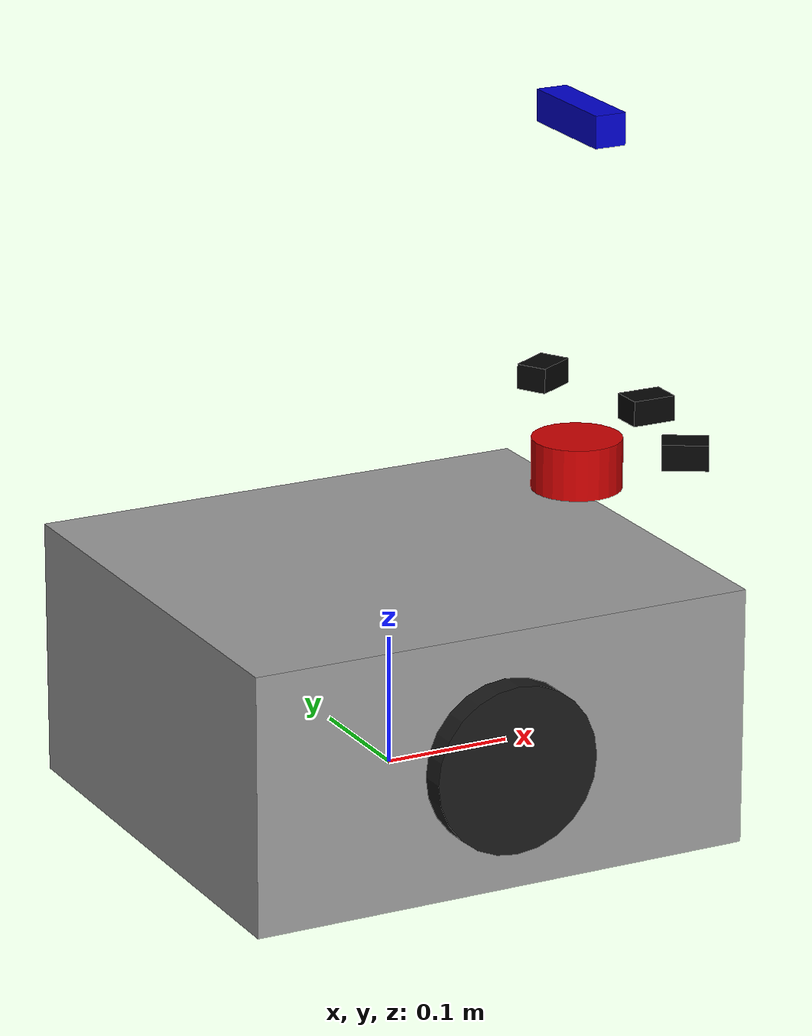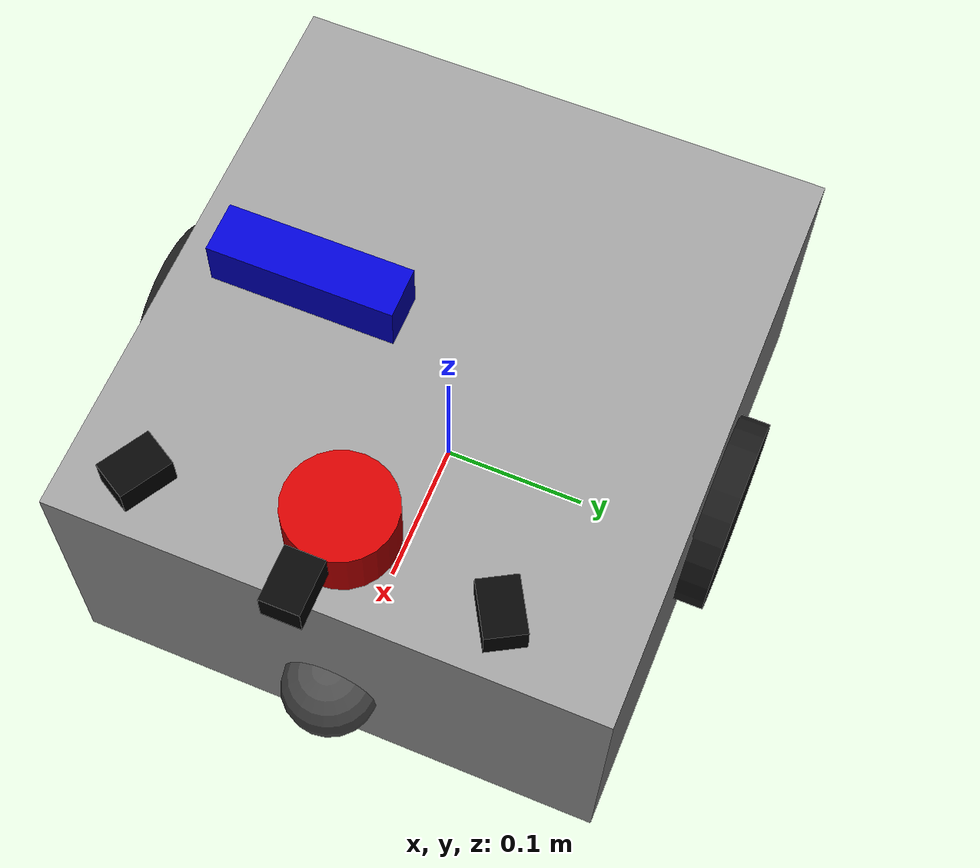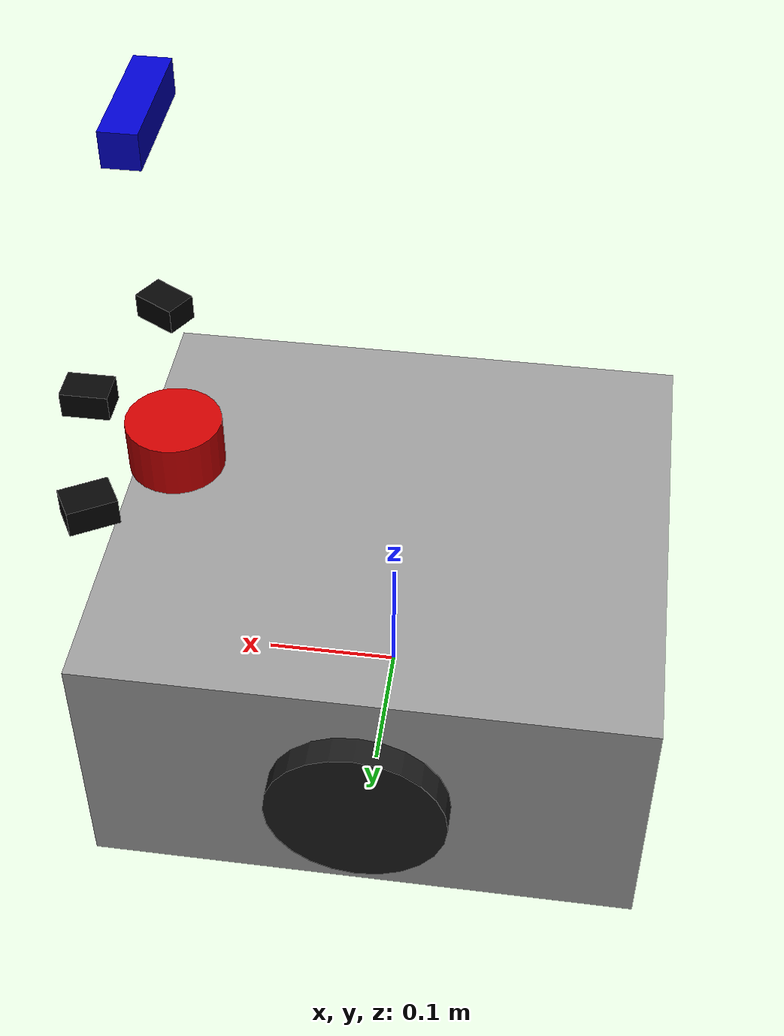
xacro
<?xml version="1.0"?>
<robot name="elderbot" xmlns:xacro="http://ros.org/wiki/xacro">
  <xacro:include filename="$(find elderbot_description)/urdf/elderbot_properties.urdf.xacro" />
  <xacro:include filename="$(find elderbot_description)/urdf/mech/base.urdf.xacro" />
  <xacro:include filename="$(find elderbot_description)/urdf/mech/wheel.urdf.xacro" />
  <xacro:include filename="$(find elderbot_description)/urdf/mech/caster_wheel.urdf.xacro" />
  <xacro:include filename="$(find elderbot_description)/urdf/sensors/imu.urdf.xacro" />
  <xacro:include filename="$(find elderbot_description)/urdf/sensors/generic_laser.urdf.xacro" />
  <xacro:include filename="$(find elderbot_description)/urdf/sensors/depth_sensor.urdf.xacro" />
  <xacro:include filename="$(find elderbot_description)/urdf/sensors/ultrasonic.urdf.xacro" />
  <xacro:include filename="$(find elderbot_description)/urdf/controllers/diff_drive.urdf.xacro" />

  <xacro:base
    length="${base_length}"
    width="${base_width}"
    height="${base_height}"
    mass="${base_mass}"
    wheel_radius="${wheel_radius}"
    wheel_pos_z="${wheel_pos_z}"
  />

  <xacro:wheel
    side="left"
    radius="${wheel_radius}"
    width="${wheel_width}"
    pos_x="${wheel_pos_x}"
    pos_y="${wheel_pos_y}"
    pos_z="${wheel_pos_z}"
    mass="${wheel_mass}"
  />

  <xacro:wheel
    side="right"
    radius="${wheel_radius}"
    width="${wheel_width}"
    pos_x="${wheel_pos_x}"
    pos_y="${-wheel_pos_y}"
    pos_z="${wheel_pos_z}"
    mass="${wheel_mass}"
  />

  <xacro:if value="${front_caster_wheel}">
    <xacro:caster_wheel
      side="front"
      mass="0.01"
      base_length="${base_length}"
      wheel_radius="${wheel_radius}"
      wheel_pos_z="${wheel_pos_z}"
    />
  </xacro:if>

  <xacro:imu/>

  <xacro:generic_laser>
    <xacro:insert_block name="laser_pose" />
  </xacro:generic_laser>

  <xacro:depth_sensor>
    <xacro:insert_block name="depth_sensor_pose" />
  </xacro:depth_sensor>

  <xacro:ultrasonic_sensor name="ultrasonic_front">
    <xacro:insert_block name="ultrasonic_front_pose" />
  </xacro:ultrasonic_sensor>

  <xacro:ultrasonic_sensor name="ultrasonic_front_left">
    <xacro:insert_block name="ultrasonic_front_left_pose" />
  </xacro:ultrasonic_sensor>

  <xacro:ultrasonic_sensor name="ultrasonic_front_right">
    <xacro:insert_block name="ultrasonic_front_right_pose" />
  </xacro:ultrasonic_sensor>

  <xacro:diff_drive_controller
    wheel_separation="${wheel_pos_y * 2}"
    wheel_radius="${wheel_radius}"
    wheel_torque="${wheel_torque}"
  />
</robot>

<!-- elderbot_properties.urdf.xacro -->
<robot xmlns:xacro="http://ros.org/wiki/xacro">
  <!-- Base dimensions -->
  <xacro:property name="base_length" value="0.40" />
  <xacro:property name="base_width" value="0.37" />
  <xacro:property name="base_height" value="0.20" />
  <xacro:property name="base_mass" value="5.0" />

  <!-- Wheel properties -->
  <xacro:property name="wheel_radius" value="0.065" />
  <xacro:property name="wheel_width" value="0.04" />
  <xacro:property name="wheel_pos_x" value="0.0" />
  <xacro:property name="wheel_pos_y" value="0.185" />
  <xacro:property name="wheel_pos_z" value="0.0" />
  <xacro:property name="wheel_mass" value="0.5" />
  <xacro:property name="wheel_torque" value="20" />

  <!-- Caster wheels -->
  <xacro:property name="front_caster_wheel" value="true" />
  <xacro:property name="rear_caster_wheel" value="false" />

  <!-- Laser (RPLidar C1): mounted at front, 16cm from center, 15cm above ground -->
  <xacro:property name="laser_pose">
    <origin xyz="0.16 0 0.15" rpy="0 0 3.14159265" />
  </xacro:property>

  <!-- Depth sensor (Orbbec Gemini 335): at x=0.16m, z=0.42m -->
  <xacro:property name="depth_sensor_pose">
    <origin xyz="0.16 0 0.42" rpy="0 0 0" />
  </xacro:property>

  <!-- Ultrasonic sensors: 0.22m from robot center, 0.25m above ground. -->
  <xacro:property name="ultrasonic_mount_z" value="0.185" />
  <xacro:property name="ultrasonic_front_pose">
    <origin xyz="0.22 0 ${ultrasonic_mount_z}" rpy="0 0 0" />
  </xacro:property>
  <xacro:property name="ultrasonic_front_left_pose">
    <origin xyz="0.1905256 0.11 ${ultrasonic_mount_z}" rpy="0 0 0.5235987756" />
  </xacro:property>
  <xacro:property name="ultrasonic_front_right_pose">
    <origin xyz="0.1905256 -0.11 ${ultrasonic_mount_z}" rpy="0 0 -0.5235987756" />
  </xacro:property>
</robot>

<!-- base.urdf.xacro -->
<robot xmlns:xacro="http://ros.org/wiki/xacro">
  <xacro:macro name="base" params="length width height mass wheel_radius wheel_pos_z">
    <link name="base_footprint"/>
    <link name="base_link">
      <visual>
        <origin xyz="0 0 0" rpy="0 0 0"/>
        <geometry>
          <box size="${length} ${width} ${height}"/>
        </geometry>
        <material name="grey">
          <color rgba="0.6 0.6 0.6 1.0"/>
        </material>
      </visual>
      <collision>
        <origin xyz="0 0 0" rpy="0 0 0"/>
        <geometry>
          <box size="${length} ${width} ${height}"/>
        </geometry>
      </collision>
      <inertial>
        <origin xyz="0 0 0" rpy="0 0 0"/>
        <mass value="${mass}"/>
        <inertia ixx="${(1/12) * mass * ((width * width) + (height * height))}" ixy="0.0" ixz="0.0"
                 iyy="${(1/12) * mass * ((length * length) + (height * height))}" iyz="0.0"
                 izz="${(1/12) * mass * ((length * length) + (width * width))}"/>
      </inertial>
    </link>
    <joint name="base_to_footprint" type="fixed">
      <parent link="base_footprint"/>
      <child link="base_link"/>
      <origin xyz="0 0 ${wheel_radius - wheel_pos_z}" rpy="0 0 0"/>
    </joint>
  </xacro:macro>
</robot>

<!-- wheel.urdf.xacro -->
<robot xmlns:xacro="http://ros.org/wiki/xacro">
  <xacro:macro name="wheel" params="side radius width pos_x pos_y pos_z mass">
    <link name="${side}_wheel_link">
      <visual>
        <origin xyz="0 0 0" rpy="${pi/2} 0 0"/>
        <geometry>
          <cylinder radius="${radius}" length="${width}"/>
        </geometry>
        <material name="black">
            <color rgba="0.1 0.1 0.1 1.0"/>
        </material>
      </visual>
      <collision>
        <origin xyz="0 0 0" rpy="${pi/2} 0 0"/>
        <geometry>
          <cylinder radius="${radius}" length="${width}"/>
        </geometry>
      </collision>
      <inertial>
        <origin xyz="0 0 0" rpy="0 0 0"/>
        <mass value="${mass}"/>
        <inertia ixx="${(2/5) * mass * (radius * radius)}" ixy="0" ixz="0"
                 iyy="${(2/5) * mass * (radius * radius)}" iyz="0"
                 izz="${(2/5) * mass * (radius * radius)}" />
      </inertial>
    </link>
    <joint name="${side}_wheel_joint" type="continuous">
      <axis xyz="0 1 0" />
      <parent link="base_link"/>
      <child link="${side}_wheel_link"/>
      <origin xyz="${pos_x} ${pos_y} ${pos_z}" rpy="0 0 0"/>
    </joint>
  </xacro:macro>
</robot>

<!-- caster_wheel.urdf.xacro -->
<robot xmlns:xacro="http://ros.org/wiki/xacro">
  <xacro:macro name="caster_wheel" params="side mass base_length wheel_radius wheel_pos_z">
    <xacro:property name="caster_wheel_radius" value="${wheel_radius / 2}" />
    <xacro:if value="${side == 'front'}">
      <xacro:property name="x_offset" value="${base_length / 2}" />
    </xacro:if>
    <xacro:if value="${side == 'rear'}">
      <xacro:property name="x_offset" value="${-base_length / 2}" />
    </xacro:if>

    <link name="${side}_caster_wheel_link">
      <visual>
        <origin xyz="0 0 0" rpy="0 0 0"/>
        <geometry>
          <sphere radius="${caster_wheel_radius}"/>
        </geometry>
        <material name="dark_grey">
          <color rgba="0.3 0.3 0.3 1.0"/>
        </material>
      </visual>
      <collision>
        <origin xyz="0 0 0" rpy="0 0 0"/>
        <geometry>
          <sphere radius="${caster_wheel_radius}"/>
        </geometry>
      </collision>
      <inertial>
        <origin xyz="0 0 0" rpy="0 0 0"/>
        <mass value="${mass}"/>
        <inertia ixx="${(2/5) * mass * (caster_wheel_radius * caster_wheel_radius)}" ixy="0" ixz="0"
                 iyy="${(2/5) * mass * (caster_wheel_radius * caster_wheel_radius)}" iyz="0"
                 izz="${(2/5) * mass * (caster_wheel_radius * caster_wheel_radius)}"/>
      </inertial>
    </link>
    <joint name="${side}_caster_wheel_joint" type="fixed">
      <parent link="base_link"/>
      <child link="${side}_caster_wheel_link"/>
      <origin xyz="${x_offset} 0 ${-(wheel_radius - wheel_pos_z - caster_wheel_radius)}" rpy="0 0 0"/>
    </joint>
    <gazebo reference="${side}_caster_wheel_link">
      <mu1 value="0.001"/>
      <mu2 value="0.001"/>
    </gazebo>
  </xacro:macro>
</robot>

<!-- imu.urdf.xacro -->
<robot xmlns:xacro="http://ros.org/wiki/xacro">
  <xacro:macro name="imu">
    <link name="imu_link"/>
    <joint name="imu_to_base_link" type="fixed">
      <parent link="base_link"/>
      <child link="imu_link"/>
      <origin xyz="0 -0.05 0.43" rpy="0 0 0"/>
    </joint>
  </xacro:macro>
</robot>

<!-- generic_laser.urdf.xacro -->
<robot xmlns:xacro="http://ros.org/wiki/xacro">
  <xacro:include filename="$(find elderbot_description)/urdf/sensors/laser.urdf.xacro" />
  <xacro:macro name="generic_laser" params="*origin">
    <xacro:laser
      update_rate="10"
      ray_count="360"
      min_angle="-3.1416"
      max_angle="3.1416"
      min_range="0.08"
      max_range="16.0"
      frame_id="laser"
      topic_name="scan"
    >
      <xacro:insert_block name="origin" />
    </xacro:laser>
  </xacro:macro>
</robot>

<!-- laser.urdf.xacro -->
<robot xmlns:xacro="http://ros.org/wiki/xacro">
  <xacro:macro name="laser" params="update_rate ray_count min_angle max_angle min_range max_range frame_id topic_name *origin">
    <link name="${frame_id}">
      <visual>
        <origin xyz="0 0 0" rpy="0 0 0"/>
        <geometry>
          <cylinder radius="0.035" length="0.04"/>
        </geometry>
        <material name="red">
          <color rgba="0.8 0.0 0.0 1.0"/>
        </material>
      </visual>
      <collision>
        <origin xyz="0 0 0" rpy="0 0 0"/>
        <geometry>
          <cylinder radius="0.035" length="0.04"/>
        </geometry>
      </collision>
      <inertial>
        <origin xyz="0 0 0" rpy="0 0 0"/>
        <mass value="0.1"/>
        <inertia ixx="0.0001" ixy="0" ixz="0"
                 iyy="0.0001" iyz="0"
                 izz="0.0001"/>
      </inertial>
    </link>
    <joint name="laser_joint" type="fixed">
      <parent link="base_link"/>
      <child link="${frame_id}"/>
      <xacro:insert_block name="origin" />
    </joint>
    <gazebo reference="${frame_id}">
      <sensor name="laser" type="gpu_ray">
        <always_on>true</always_on>
        <visualize>true</visualize>
        <update_rate>${update_rate}</update_rate>
        <ray>
          <scan>
            <horizontal>
              <samples>${ray_count}</samples>
              <resolution>1</resolution>
              <min_angle>${min_angle}</min_angle>
              <max_angle>${max_angle}</max_angle>
            </horizontal>
          </scan>
          <range>
            <min>${min_range}</min>
            <max>${max_range}</max>
            <resolution>0.015</resolution>
          </range>
          <noise>
            <type>gaussian</type>
            <mean>0.0</mean>
            <stddev>0.01</stddev>
          </noise>
        </ray>
        <plugin name="scan" filename="libgazebo_ros_ray_sensor.so">
          <ros>
            <remapping>~/out:=${topic_name}</remapping>
          </ros>
          <output_type>sensor_msgs/LaserScan</output_type>
          <frame_name>${frame_id}</frame_name>
        </plugin>
      </sensor>
    </gazebo>
  </xacro:macro>
</robot>

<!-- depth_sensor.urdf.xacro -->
<robot xmlns:xacro="http://ros.org/wiki/xacro">
  <xacro:macro name="depth_sensor" params="*origin">
    <link name="camera_link">
      <visual>
        <origin xyz="0 0 0" rpy="0 0 0"/>
        <geometry>
          <box size="0.025 0.09 0.025"/>
        </geometry>
        <material name="blue">
          <color rgba="0.0 0.0 0.8 1.0"/>
        </material>
      </visual>
      <collision>
        <origin xyz="0 0 0" rpy="0 0 0"/>
        <geometry>
          <box size="0.025 0.09 0.025"/>
        </geometry>
      </collision>
      <inertial>
        <origin xyz="0 0 0" rpy="0 0 0"/>
        <mass value="0.1"/>
        <inertia ixx="0.0001" ixy="0" ixz="0"
                 iyy="0.0001" iyz="0"
                 izz="0.0001"/>
      </inertial>
    </link>
    <joint name="camera_joint" type="fixed">
      <parent link="base_link"/>
      <child link="camera_link"/>
      <xacro:insert_block name="origin" />
    </joint>

    <link name="camera_depth_frame"/>
    <joint name="camera_depth_joint" type="fixed">
      <parent link="camera_link"/>
      <child link="camera_depth_frame"/>
      <origin xyz="0 0 0" rpy="${-pi/2} 0 ${-pi/2}"/>
    </joint>

    <gazebo reference="camera_link">
      <sensor name="depth_camera" type="depth">
        <always_on>true</always_on>
        <visualize>true</visualize>
        <update_rate>30</update_rate>
        <camera>
          <horizontal_fov>1.047</horizontal_fov>
          <image>
            <width>640</width>
            <height>480</height>
            <format>R8G8B8</format>
          </image>
          <clip>
            <near>0.05</near>
            <far>8.0</far>
          </clip>
        </camera>
        <plugin name="depth_camera" filename="libgazebo_ros_camera.so">
          <ros>
            <remapping>custom_camera/image_raw:=camera/color/image_raw</remapping>
            <remapping>custom_camera/image_depth:=camera/depth/image_raw</remapping>
            <remapping>custom_camera/camera_info:=camera/color/camera_info</remapping>
            <remapping>custom_camera/camera_info_depth:=camera/depth/camera_info</remapping>
            <remapping>custom_camera/points:=camera/depth/points</remapping>
          </ros>
          <camera_name>custom_camera</camera_name>
          <frame_name>camera_depth_frame</frame_name>
          <hack_baseline>0.07</hack_baseline>
          <min_depth>0.05</min_depth>
          <max_depth>8.0</max_depth>
        </plugin>
      </sensor>
    </gazebo>
  </xacro:macro>
</robot>

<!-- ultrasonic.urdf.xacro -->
<robot xmlns:xacro="http://ros.org/wiki/xacro">
  <xacro:macro name="ultrasonic_sensor" params="name *origin">
    <link name="${name}">
      <visual>
        <origin xyz="0 0 0" rpy="0 0 0"/>
        <geometry>
          <box size="0.035 0.025 0.02"/>
        </geometry>
        <material name="ultrasonic_black">
          <color rgba="0.02 0.02 0.02 1.0"/>
        </material>
      </visual>
      <collision>
        <origin xyz="0 0 0" rpy="0 0 0"/>
        <geometry>
          <box size="0.035 0.025 0.02"/>
        </geometry>
      </collision>
      <inertial>
        <origin xyz="0 0 0" rpy="0 0 0"/>
        <mass value="0.03"/>
        <inertia ixx="0.00001" ixy="0" ixz="0"
                 iyy="0.00001" iyz="0"
                 izz="0.00001"/>
      </inertial>
    </link>
    <joint name="${name}_joint" type="fixed">
      <parent link="base_link"/>
      <child link="${name}"/>
      <xacro:insert_block name="origin" />
    </joint>
  </xacro:macro>
</robot>
